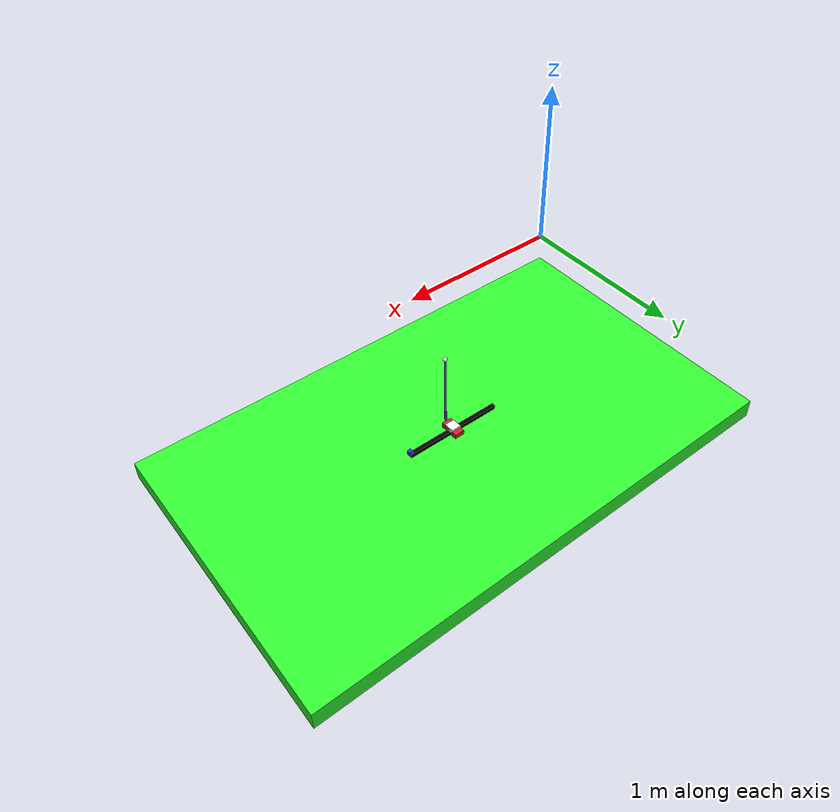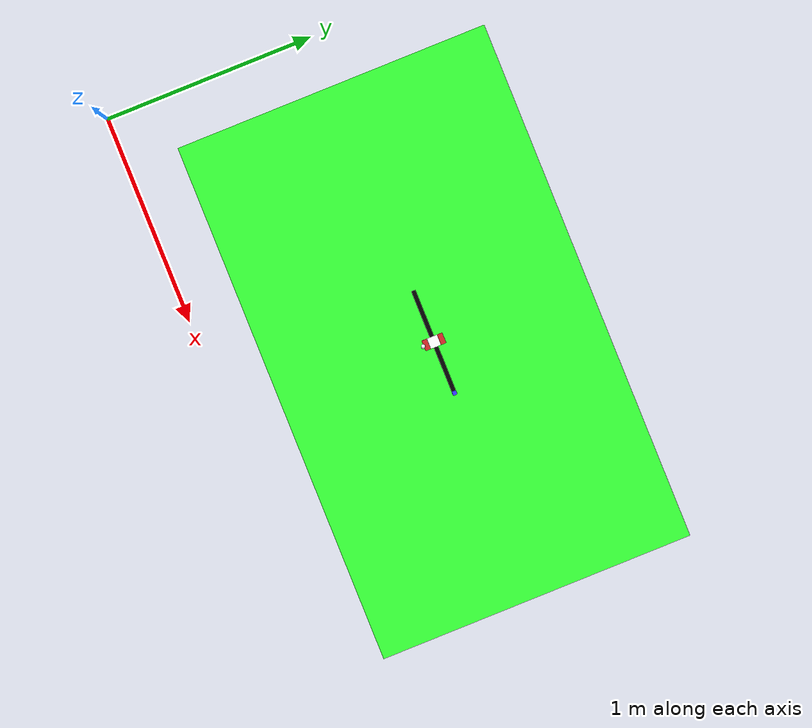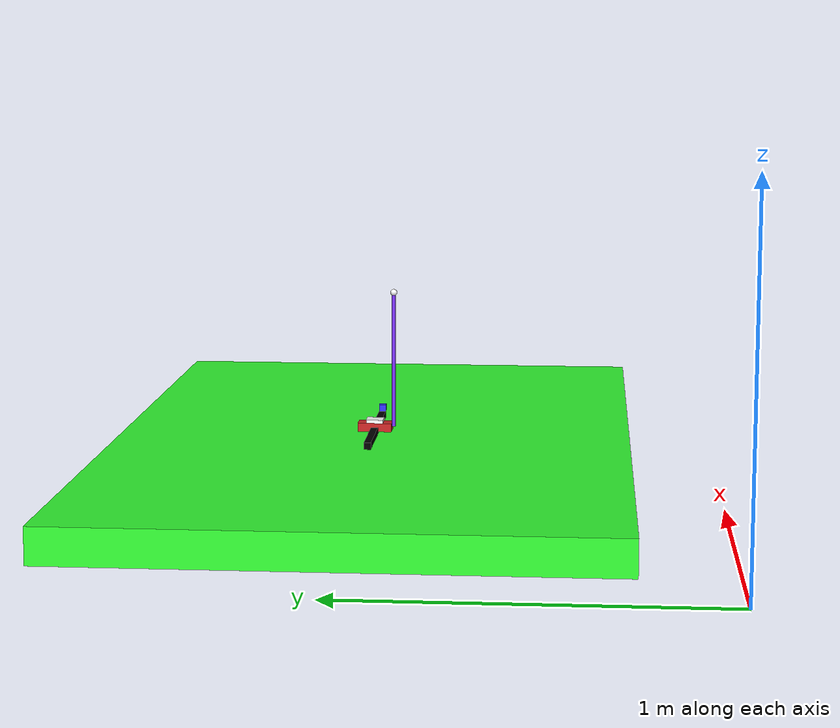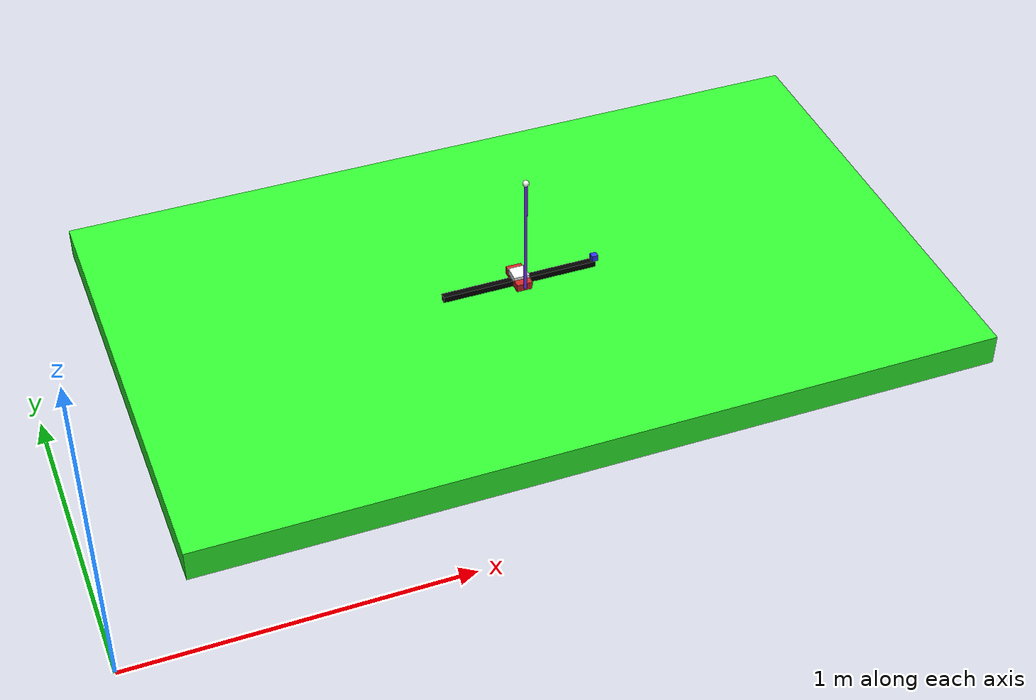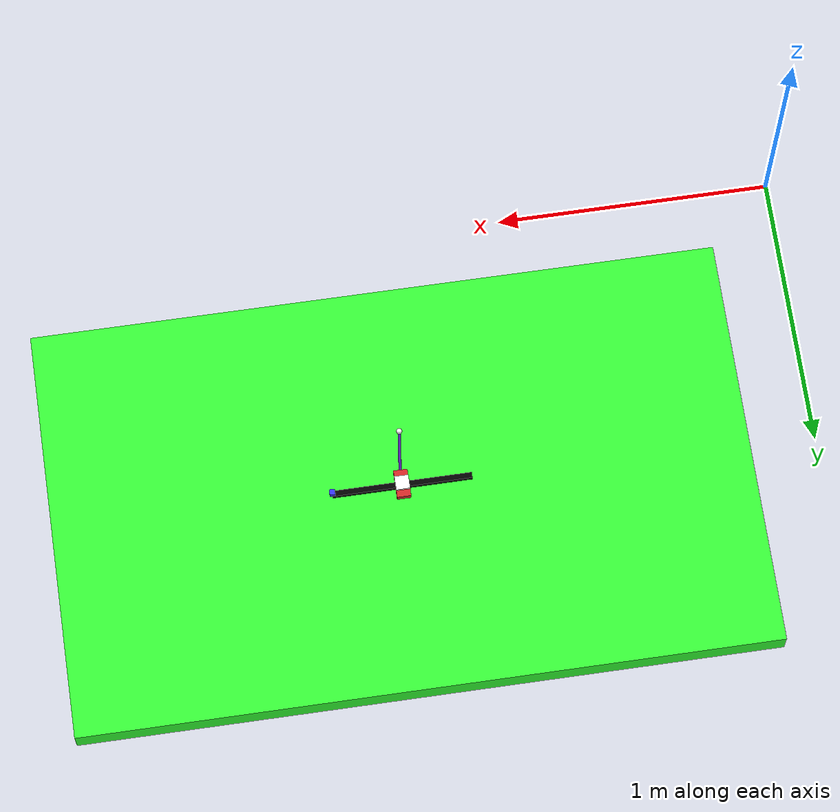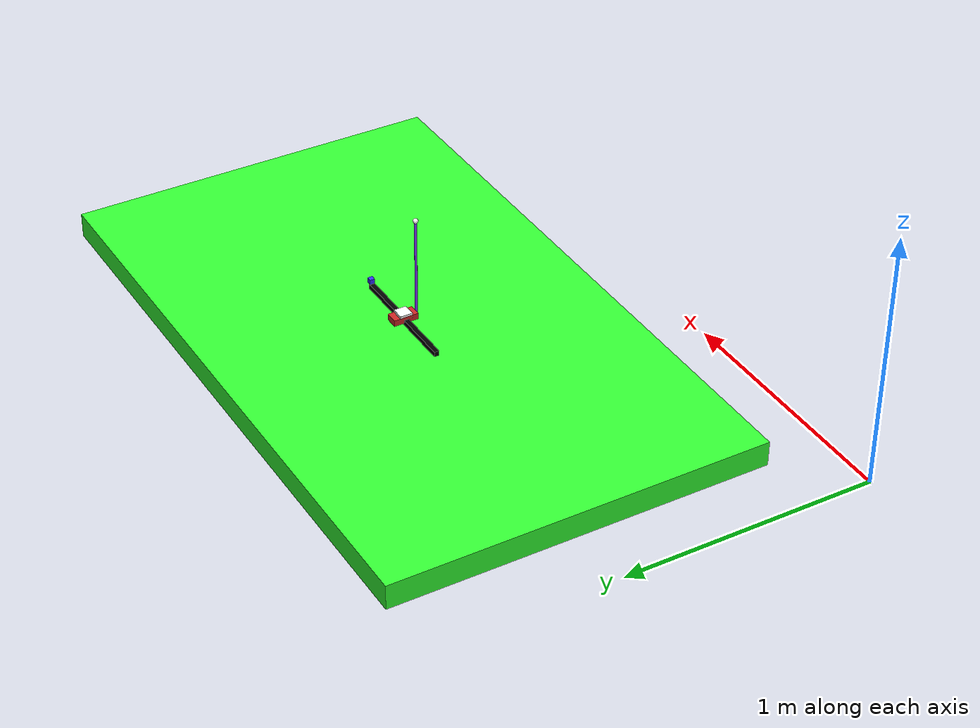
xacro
<?xml version="1.0"?>

<!-- Main URDF file -->
<!-- URDF generally uses meters, kilograms, and radians for lengths, masses, and angles, respectively -->

<robot name="inverted_pendulum" xmlns:xacro="http://www.ros.org/wiki/xacro">

    <xacro:property name="PI" value="3.1415926535897931"/>
    <xacro:property name="length_slider" value="0.5" /> <!-- pole length -->
    <xacro:property name="mass_slider" value="100" />
    <xacro:property name="mass_cart" value="20.0" />
    <xacro:property name="m_rod" value="2.0" />
    <xacro:property name="m_mass" value="0.05" />
    <xacro:property name="length_rod" value="0.4" />
    <xacro:property name="radius_rod" value="0.005" />
    <xacro:property name="radius" value="0.05" />

    <xacro:property name="rail_height" value="0.02" />

    <xacro:property name="friction_cart" value="0.5" />
    <xacro:property name="friction_rod" value="0.1" />

    <xacro:property name="inertia_rod" value="0.006" />
    <xacro:property name="inertia_cart" value="0.05" />
    <xacro:property name="inertia_slider" value="0.05" />

    <xacro:property name="cart_width" value="0.05" />
    <xacro:property name="cart_height" value="0.025" />
    <xacro:property name="cart_depth" value="0.1" />

    <xacro:property name="gravity" value="9.81" />

    <xacro:include filename="material_calculations.xacro" />

  <!-- Declare variables -->
  <link name="world"/>

  <joint name="base_joint" type="fixed">
      <origin xyz="1.5 1.0 0" rpy="0 0 0"/>
      <parent link="world"/>
      <child link="base_link"/>
  </joint>

  <link name="base_link">
    <visual>
        <origin xyz="0 0 0.05" rpy="0 0 0"/>
        <geometry>
            <box size="2.5 1.5 0.1" />
        </geometry>
        <material name="green">
            <color rgba="0.2 1 0.2 1"/>
        </material>
    </visual>
    <collision>
        <origin xyz="0 0 0.05" rpy="0 0 0"/>
        <geometry>
            <box size="2.5 1.5 0.1" />
        </geometry>
    </collision>
    <inertial>
        <origin xyz="0 0 0.05" rpy="0 0 0"/>
        <mass value="12" />
        <inertia ixx="2.26" ixy="0.0" ixz="0.0" iyy="6.26" iyz="0.0" izz="8.5" />
    </inertial>
</link>

 <gazebo reference="base_link">
    <material>Gazebo/Road</material>
  </gazebo>

<!-- Rail Link -->
  <link name="rail">
    <static>true</static>
    <inertial>
      <mass value="${mass_slider}" />
      <inertia
        ixx="${mass_slider*length_slider*length_slider/12}" ixy="0.0" ixz="0.0"
        iyy="0.0" iyz="0.0"
        izz="${mass_slider*length_slider*length_slider/12}"/>
     </inertial>
    <visual>
      <material name="black"/>
      <geometry>
        <box size="0.5 0.02 0.02" />
      </geometry>
    </visual>
    <collision>
      <geometry>
        <box size="0.5 0.02 0.02" />
      </geometry>
    </collision>
  </link>

  <gazebo reference="rail">
      <material>Gazebo/Black</material>
  </gazebo>

    <!-- Fixed joint to fix robot to Gazebo 'base_link' -->
  <joint name="rail_fixed" type="fixed">
    <parent link="base_link"/>
    <child link="rail"/>
    <origin xyz="0 0 0.11" rpy="0 0 0" />
  </joint>

  <!-- Cart Link -->
  <link name="cart">
    <inertial>
      <mass value="${mass_cart}" /> <!-- Design parameter, adjust as needed -->
      <inertia
        ixx="${mass_cart*(cart_depth*cart_depth+cart_height*cart_height)/12}" ixy="0.0" ixz="0.0"
        iyy="${mass_cart*(cart_depth*cart_depth+cart_width*cart_width)/12}" iyz="0.0"
        izz="${mass_cart*(cart_width*cart_width+cart_height*cart_height)/12}"/>
    </inertial>
    <visual>
      <geometry>
        <box size="${cart_width} ${cart_depth} ${cart_height}" />
      </geometry>
    </visual>
    <collision>
      <geometry>
        <box size="${cart_width} ${cart_depth} ${cart_height}" />
      </geometry>
    </collision>
  </link>

  <gazebo reference="cart">
    <material>Gazebo/Red</material>
  </gazebo>

<gazebo>
  <plugin name="gazebo_ros_force_controller" filename="libgazebo_ros_force.so">
    <ros>
      <namespace>/</namespace>
      <remapping>gazebo_ros_force:=cart_force</remapping>
    </ros>
    <link_name>cart</link_name>
    <update_rate>100.0</update_rate>
    <force_frame>link</force_frame>
  </plugin>
</gazebo>

    <!-- Joint connecting rail and cart -->
  <joint name="rail_cart_joint" type="prismatic">
    <parent link="rail" />
    <child link="cart" />
    <origin xyz="0 0 0.01" rpy="0 0 0" />
    <axis xyz="1 0 0" />
    <limit lower="-0.25" upper="0.25" effort="100" velocity="2"/>
    <dynamics damping="${friction_cart}" />  <!-- Estimated damping coefficient -->
  </joint>

   <!-- Pendulum Rod Link -->
  <link name="pendulum_rod">
    <inertial>
      <origin xyz="0 0 ${length_rod/2}" rpy="0 0 0" />
      <mass value="${m_rod}" /> <!-- Design Var -->
      <inertia
        ixx="${m_rod*length_rod*length_rod/3}" ixy="0.0" ixz="0.0"
        iyy="0.0" iyz="0.0"
        izz="${m_rod*length_rod*length_rod/3}"/>
    </inertial>
    <visual>
      <geometry>
        <cylinder length="${length_rod}" radius="0.005"/>
      </geometry>
      <material name="purple"/>
       <origin xyz="0 0 ${length_rod/2}" rpy="0 0 0" />
    </visual>
    <collision>
        <geometry>
          <cylinder length="${length_rod}" radius="0.005"/>
        </geometry>
        <origin xyz="0 0 ${length_rod/2}" rpy="0 0 0" />
    </collision>
  </link>

  <gazebo reference="pendulum_rod">
    <material>Gazebo/Purple</material>
  </gazebo>

    <!-- Joint connecting cart and pendulum rod -->
  <joint name="cart_pendulum_rod_joint" type="revolute">
    <parent link="cart" />
    <child link="pendulum_rod" />
    <origin  xyz="0 ${-cart_depth/2-radius_rod}  0" rpy="0 0 0" />
    <axis xyz="0 1 0" />
    <dynamics damping="${friction_rod}" />  <!-- Estimated damping coefficient -->
    <limit effort="1000.0" lower="${-PI/2}" upper="${PI/2}" velocity="1000.0"/>
    <gazebo>
    <provideFeedback>true</provideFeedback>
  </gazebo>
  </joint>

  <!-- Pendulum Mass Link  at the top of the pendulum -->
  <link name="pendulum_mass">
    <inertial>
      <origin xyz="0 0 0" rpy="0 0 0" />
      <mass value="${m_mass}" />
      <inertia ixx="1" ixy="0" ixz="0" iyy="1" iyz="0" izz="1" />
    </inertial>
    <visual>
      <geometry>
        <sphere radius="0.01"/>
      </geometry>
      <material name="white"/>
    </visual>
    <collision>
        <geometry>
            <sphere radius="0.01"/>
        </geometry>
    </collision>
  </link>

  <gazebo reference="pendulum_mass">
    <material>Gazebo/White</material>
  </gazebo>

  <!-- Joint connecting pendulum rod and pendulum mass -->
  <joint name="pendulum_rod_mass_joint" type="fixed">
    <parent link="pendulum_rod" />
    <child link="pendulum_mass" />
    <origin xyz="0 0 ${length_rod}" rpy="0 0 0" />
  </joint>

  <gazebo>
  <plugin name="gazebo_ros_disturbance_controller" filename="libgazebo_ros_force.so">
    <ros>
      <namespace>/</namespace>
      <remapping>gazebo_ros_force:=pendulum_disturbance_force</remapping>
    </ros>
    <link_name>pendulum_mass</link_name>
    <update_rate>100.0</update_rate>
    <force_frame>link</force_frame>
  </plugin>
</gazebo>

<xacro:include filename="sensors.xacro" />

</robot>

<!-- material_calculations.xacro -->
<robot xmlns:xacro="http://www.ros.org/wiki/xacro" >

    <!-- Specify some colours -->

    <material name="white">
        <color rgba="1 1 1 1"/>
    </material>

    <material name="orange">
        <color rgba="1 0.3 0.1 1"/>
    </material>

    <material name="blue">
        <color rgba="0.2 0.2 1 1"/>
    </material>

    <material name="black">
        <color rgba="0 0 0 1"/>
    </material>

    <material name="green">
        <color rgba="0.2 1 0.2 1"/>
    </material>

    <material name="purple">
        <color rgba="0.5 0.2 1 1"/>
    </material>

    <!-- Specify some standard inertial calculations https://en.wikipedia.org/wiki/List_of_moments_of_inertia -->
    <!-- These make use of xacro's mathematical functionality -->

    <xacro:macro name="inertial_sphere" params="mass radius *origin">
        <inertial>
            <xacro:insert_block name="origin"/>
            <mass value="${mass}" />
            <inertia ixx="${(2/5) * mass * (radius*radius)}" ixy="0.0" ixz="0.0"
                    iyy="${(2/5) * mass * (radius*radius)}" iyz="0.0"
                    izz="${(2/5) * mass * (radius*radius)}" />
        </inertial>
    </xacro:macro>

    <xacro:macro name="inertial_box" params="mass x y z *origin">
        <inertial>
            <xacro:insert_block name="origin"/>
            <mass value="${mass}" />
            <inertia ixx="${(1/12) * mass * (y*y+z*z)}" ixy="0.0" ixz="0.0"
                    iyy="${(1/12) * mass * (x*x+z*z)}" iyz="0.0"
                    izz="${(1/12) * mass * (x*x+y*y)}" />
        </inertial>
    </xacro:macro>

    <xacro:macro name="inertial_cylinder" params="mass length radius *origin">
        <inertial>
            <xacro:insert_block name="origin"/>
            <mass value="${mass}" />
            <inertia ixx="${(1/12) * mass * (3*radius*radius + length*length)}" ixy="0.0" ixz="0.0"
                    iyy="${(1/12) * mass * (3*radius*radius + length*length)}" iyz="0.0"
                    izz="${(1/2) * mass * (radius*radius)}" />
        </inertial>
    </xacro:macro>

</robot>

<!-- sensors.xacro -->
<robot xmlns:xacro="http://www.ros.org/wiki/xacro">

    <xacro:property name="ultrasonic_width" value="0.02" /> <!-- Width of ultrasonic sensor box -->
    <xacro:property name="ultrasonic_height" value="0.02" /> <!-- Height of ultrasonic sensor box -->
    <xacro:property name="ultrasonic_depth" value="0.02" /> <!-- Depth of ultrasonic sensor box -->
    <xacro:property name="ultrasonic_mass" value="0.01" /> <!-- Mass of ultrasonic sensor -->

    <xacro:property name="imu_width" value="0.05" /> <!-- Width of IMU box -->
    <xacro:property name="imu_height" value="0.02" /> <!-- Height of IMU box -->
    <xacro:property name="imu_depth" value="0.05" /> <!-- Depth of IMU box -->
    <xacro:property name="imu_mass" value="0.01" /> <!-- Mass of IMU -->
    <xacro:property name="imu_inertia_xx" value="1e-6" /> <!-- Inertia about x-axis -->
    <xacro:property name="imu_inertia_yy" value="1e-6" /> <!-- Inertia about y-axis -->
    <xacro:property name="imu_inertia_zz" value="1e-6" /> <!-- Inertia about z-axis -->

  <!-- Sensors -->
<!-- Base define - later add noise, bias -->

<!-- Ultrasonic Sensor Link -->
<link name="ultrasonic_sensor_link">
  <inertial>
    <mass value="${ultrasonic_mass}"/>
    <inertia
        ixx="1e-6" ixy="0.0" ixz="0.0"
        iyy="1e-6" iyz="0.0"
        izz="1e-6"/> <!-- Small inertia values for the sensor -->
  </inertial>
  <visual>
    <geometry>
      <box size="${ultrasonic_width} ${ultrasonic_depth} ${ultrasonic_height}" /> <!-- Sensor modeled as a box -->
    </geometry>
    <material name="blue"/>
  </visual>
  <collision>
    <geometry>
      <box size="${ultrasonic_width} ${ultrasonic_depth} ${ultrasonic_height}" /> <!-- Same geometry for collision -->
    </geometry>
  </collision>
</link>

<!-- Fixed Joint connecting Ultrasonic Sensor to Rail -->
<joint name="ultrasonic_sensor_joint" type="fixed">
  <parent link="rail"/>
  <child link="ultrasonic_sensor_link"/>
  <origin xyz="0.25 0 0.02" rpy="0 0 ${pi}"/> <!-- Positioned at the end of the rail, adjust xyz values as needed -->
</joint>

<gazebo reference="ultrasonic_sensor_link">
  <material>Gazebo/Blue</material>

  <sensor type="ray" name="ultrasonic_sensor">
    <always_on>true</always_on>
    <pose>0 0 0 0 0 0</pose> <!-- Sensor's position w.r.t its parent link -->
    <visualize>true</visualize> <!-- If you want to visualize the sensor's rays in Gazebo, set to true -->
    <update_rate>5.0</update_rate> <!-- The rate at which Gazebo updates the sensor's internal readings -->
    <ray>
      <scan>
        <horizontal> <!-- Horizontal scan parameters -->
          <samples>1</samples> <!-- Number of samples per scan -->
          <resolution>1</resolution> <!-- Angular resolution in degrees -->
        </horizontal>
      </scan>
      <range>
        <min>0.025</min> <!-- Minimum sensing distance -->
        <max>5.0</max> <!-- Maximum sensing distance -->
        <resolution>0.01</resolution> <!-- Distance resolution -->
      </range>
    </ray>
    <!-- The plugin to handle the connection between Gazebo and ROS -->
    <plugin filename="libgazebo_ros_ray_sensor.so" name="gazebo_ros_ultrasonic_sensor">
        <ros>
          <namespace>/Ultrasonic</namespace>
          <remapping>~/out:=/ultrasonic_distance</remapping>
        </ros>
      <frame_name>ultrasonic_sensor_link</frame_name> <!-- The TF frame for the ultrasonic data -->
      <update_rate>5</update_rate> <!-- Update rate for publishing to the ROS topic -->
      <radiation_type>ultrasound</radiation_type>
      <output_type>sensor_msgs/Range </output_type> <!-- The ROS message type for the ultrasonic data -->
      <gaussian_noise>0.01</gaussian_noise> <!-- Gaussian noise added to the sensor data assume mean is 0 only specifcy the std -->

      <always_on>true</always_on>
      <visualize>true</visualize>
    </plugin>
  </sensor>
</gazebo>

<!-- IMU Link -->
<link name="imu_link">
  <inertial>
    <mass value="${imu_mass}"/>
    <inertia
        ixx="${imu_inertia_xx}" ixy="0.0" ixz="0.0"
        iyy="${imu_inertia_yy}" iyz="0.0"
        izz="${imu_inertia_zz}"/>
  </inertial>
  <visual>
    <geometry>
      <box size="${imu_width} ${imu_depth} ${imu_height}"/>
    </geometry>
    <material name="white"/>
  </visual>
  <collision>
    <geometry>
      <box size="${imu_width} ${imu_depth} ${imu_height}"/>
    </geometry>
  </collision>
</link>

<!-- Fixed Joint connecting IMU to Cart -->
<joint name="imu_joint" type="fixed">
  <parent link="cart"/>
  <child link="imu_link"/>
  <origin xyz="0 0 ${cart_height/2}" rpy="0 0 0"/> <!-- Positioned at the center-top of the cart. Adjust xyz values if IMU placement differs -->
</joint>

<gazebo reference="imu_link" >
  <gravity>true</gravity> <!-- Include if you need to simulate gravity's effect -->
  <sensor type="imu" name="imu_sensor">
    <always_on>true</always_on> <!-- Ensure the sensor is always on -->
    <update_rate>50.0</update_rate> <!-- Update rate for Gazebo's internal sensor -->
    <visualize>false</visualize> <!-- If you want to visualize the sensor in Gazebo, set to true -->
    <pose>0 0 ${cart_height/2} 0 0 0</pose> <!-- Sensor's position w.r.t its parent link -->

    <!-- The plugin parameters -->
    <plugin filename="libgazebo_ros_imu_sensor.so" name="gazebo_ros_imu_sensor_plugin">
      <ros>
      <!-- publish to /imu/data -->
      <namespace>/imu</namespace>
      <remapping>~/out:=data</remapping>
      </ros>
      <frameName>imu_link</frameName> <!-- The TF frame for the IMU data -->
      <updateRateHZ>50.0</updateRateHZ> <!-- Update rate for publishing to ROS -->
      <gaussianNoise>0.0</gaussianNoise> <!-- Gaussian noise added to the sensor data -->
      <xyzOffset>0 0 0</xyzOffset> <!-- Offset of the sensor if necessary -->
      <rpyOffset>0 0 0</rpyOffset> <!-- Orientation offset of the sensor if necessary -->
      <initial_orientation_as_reference>false</initial_orientation_as_reference> <!-- Use the initial orientation as reference -->
    </plugin>
  </sensor>
  <material>Gazebo/Green</material>
</gazebo>

<!-- Rotary Encoder Link (Virtual Link) -->
<link name="rotary_encoder_link"/>

  <gazebo reference="rotary_encoder_link">
    <material>Gazebo/BlueTransparent</material>
  </gazebo>

<!-- Joint connecting rotary encoder to the cart_pendulum_rod_joint -->
<joint name="rotary_encoder_joint" type="revolute">
  <parent link="cart"/>
  <child link="rotary_encoder_link"/>
  <origin xyz="0 ${-cart_depth/2-radius_rod/2} 0" rpy="0 0 0"/>
  <axis xyz="0 1 0" />
  <dynamics damping="${friction_rod}" />  <!-- Estimated damping coefficient -->
  <limit effort="1000.0" lower="${PI/2}" upper = "${PI +(PI/2)}" velocity="1000.0"/>
</joint>

<gazebo>
  <plugin filename="libgazebo_ros_joint_state_publisher.so" name="gazebo_ros_joint_state_publisher">
    <joint_name>cart_pendulum_rod_joint</joint_name>
    <!-- Other settings if required -->
  </plugin>
</gazebo>

</robot>
